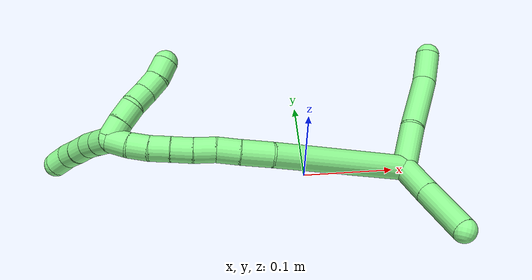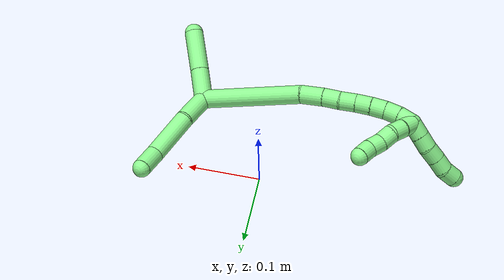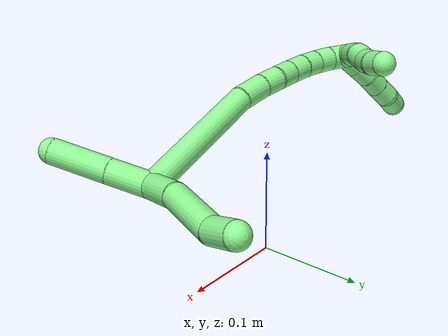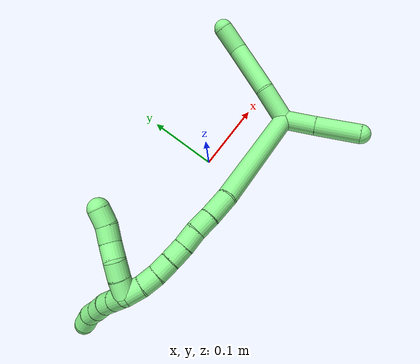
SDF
<sdf version="1.7">
 <world name="default">
  <model name="13">
   <static>0</static>
   <link name="13">
    <collision name="collision-cylinder-e_1_2_8">
     <pose>-9.7e-05 0.005588 0.022998 -0.238364 -0.004101 0.000491</pose>
     <geometry><cylinder><radius>0.0125</radius><length>0.047334</length></cylinder></geometry>
     <surface>
      <friction><ode><mu>1.16</mu><mu2>1.16</mu2><slip1>0</slip1><slip2>0</slip2></ode></friction>
      <contact><ode><kp>1e+06</kp><kd>1</kd><max_vel>0</max_vel><min_depth>0.001</min_depth></ode></contact>
     </surface>
    </collision>
    <visual name="visual-cylinder-e_1_2_8">
     <pose>-9.7e-05 0.005588 0.022998 -0.238364 -0.004101 0.000491</pose>
     <geometry><cylinder><radius>0.0125</radius><length>0.047334</length></cylinder></geometry>
     <material><ambient>0.564706 0.984314 0.572549 1</ambient></material>
    </visual>
    <collision name="collision-cylinder-e_2_8_9">
     <pose>0.001892 0.025979 0.076549 -0.451152 0.061357 -0.014084</pose>
     <geometry><cylinder><radius>0.0125</radius><length>0.06803</length></cylinder></geometry>
     <surface>
      <friction><ode><mu>1.16</mu><mu2>1.16</mu2><slip1>0</slip1><slip2>0</slip2></ode></friction>
      <contact><ode><kp>1e+06</kp><kd>1</kd><max_vel>0</max_vel><min_depth>0.001</min_depth></ode></contact>
     </surface>
    </collision>
    <visual name="visual-cylinder-e_2_8_9">
     <pose>0.001892 0.025979 0.076549 -0.451152 0.061357 -0.014084</pose>
     <geometry><cylinder><radius>0.0125</radius><length>0.06803</length></cylinder></geometry>
     <material><ambient>0.564706 0.984314 0.572549 1</ambient></material>
    </visual>
    <collision name="collision-cylinder-e_3_9_6">
     <pose>0.002615 0.0432 0.124197 -0.140551 -0.078754 0.005546</pose>
     <geometry><cylinder><radius>0.0125</radius><length>0.034636</length></cylinder></geometry>
     <surface>
      <friction><ode><mu>1.16</mu><mu2>1.16</mu2><slip1>0</slip1><slip2>0</slip2></ode></friction>
      <contact><ode><kp>1e+06</kp><kd>1</kd><max_vel>0</max_vel><min_depth>0.001</min_depth></ode></contact>
     </surface>
    </collision>
    <visual name="visual-cylinder-e_3_9_6">
     <pose>0.002615 0.0432 0.124197 -0.140551 -0.078754 0.005546</pose>
     <geometry><cylinder><radius>0.0125</radius><length>0.034636</length></cylinder></geometry>
     <material><ambient>0.564706 0.984314 0.572549 1</ambient></material>
    </visual>
    <collision name="collision-cylinder-e_1_2_10">
     <pose>0.012638 -0.011853 -0.012118 2.36726 0.64066 1.36599</pose>
     <geometry><cylinder><radius>0.0125</radius><length>0.042287</length></cylinder></geometry>
     <surface>
      <friction><ode><mu>1.16</mu><mu2>1.16</mu2><slip1>0</slip1><slip2>0</slip2></ode></friction>
      <contact><ode><kp>1e+06</kp><kd>1</kd><max_vel>0</max_vel><min_depth>0.001</min_depth></ode></contact>
     </surface>
    </collision>
    <visual name="visual-cylinder-e_1_2_10">
     <pose>0.012638 -0.011853 -0.012118 2.36726 0.64066 1.36599</pose>
     <geometry><cylinder><radius>0.0125</radius><length>0.042287</length></cylinder></geometry>
     <material><ambient>0.564706 0.984314 0.572549 1</ambient></material>
    </visual>
    <collision name="collision-cylinder-e_2_10_5">
     <pose>0.042749 -0.040091 -0.040326 2.34708 0.650424 1.35393</pose>
     <geometry><cylinder><radius>0.0125</radius><length>0.057713</length></cylinder></geometry>
     <surface>
      <friction><ode><mu>1.16</mu><mu2>1.16</mu2><slip1>0</slip1><slip2>0</slip2></ode></friction>
      <contact><ode><kp>1e+06</kp><kd>1</kd><max_vel>0</max_vel><min_depth>0.001</min_depth></ode></contact>
     </surface>
    </collision>
    <visual name="visual-cylinder-e_2_10_5">
     <pose>0.042749 -0.040091 -0.040326 2.34708 0.650424 1.35393</pose>
     <geometry><cylinder><radius>0.0125</radius><length>0.057713</length></cylinder></geometry>
     <material><ambient>0.564706 0.984314 0.572549 1</ambient></material>
    </visual>
    <collision name="collision-cylinder-e_1_2_11">
     <pose>-0.064496 -0.024589 -0.016101 2.15055 -1.14321 -1.74393</pose>
     <geometry><cylinder><radius>0.0125</radius><length>0.141755</length></cylinder></geometry>
     <surface>
      <friction><ode><mu>1.16</mu><mu2>1.16</mu2><slip1>0</slip1><slip2>0</slip2></ode></friction>
      <contact><ode><kp>1e+06</kp><kd>1</kd><max_vel>0</max_vel><min_depth>0.001</min_depth></ode></contact>
     </surface>
    </collision>
    <visual name="visual-cylinder-e_1_2_11">
     <pose>-0.064496 -0.024589 -0.016101 2.15055 -1.14321 -1.74393</pose>
     <geometry><cylinder><radius>0.0125</radius><length>0.141755</length></cylinder></geometry>
     <material><ambient>0.564706 0.984314 0.572549 1</ambient></material>
    </visual>
    <collision name="collision-cylinder-e_2_11_12">
     <pose>-0.144159 -0.052032 -0.03561 2.44449 -1.28571 -2.23817</pose>
     <geometry><cylinder><radius>0.0125</radius><length>0.031609</length></cylinder></geometry>
     <surface>
      <friction><ode><mu>1.16</mu><mu2>1.16</mu2><slip1>0</slip1><slip2>0</slip2></ode></friction>
      <contact><ode><kp>1e+06</kp><kd>1</kd><max_vel>0</max_vel><min_depth>0.001</min_depth></ode></contact>
     </surface>
    </collision>
    <visual name="visual-cylinder-e_2_11_12">
     <pose>-0.144159 -0.052032 -0.03561 2.44449 -1.28571 -2.23817</pose>
     <geometry><cylinder><radius>0.0125</radius><length>0.031609</length></cylinder></geometry>
     <material><ambient>0.564706 0.984314 0.572549 1</ambient></material>
    </visual>
    <collision name="collision-cylinder-e_3_12_13">
     <pose>-0.170543 -0.056213 -0.041053 2.56325 -1.35748 -2.43485</pose>
     <geometry><cylinder><radius>0.0125</radius><length>0.022955</length></cylinder></geometry>
     <surface>
      <friction><ode><mu>1.16</mu><mu2>1.16</mu2><slip1>0</slip1><slip2>0</slip2></ode></friction>
      <contact><ode><kp>1e+06</kp><kd>1</kd><max_vel>0</max_vel><min_depth>0.001</min_depth></ode></contact>
     </surface>
    </collision>
    <visual name="visual-cylinder-e_3_12_13">
     <pose>-0.170543 -0.056213 -0.041053 2.56325 -1.35748 -2.43485</pose>
     <geometry><cylinder><radius>0.0125</radius><length>0.022955</length></cylinder></geometry>
     <material><ambient>0.564706 0.984314 0.572549 1</ambient></material>
    </visual>
    <collision name="collision-cylinder-e_4_13_14">
     <pose>-0.192039 -0.058546 -0.046502 2.85557 -1.23744 -2.74249</pose>
     <geometry><cylinder><radius>0.0125</radius><length>0.021755</length></cylinder></geometry>
     <surface>
      <friction><ode><mu>1.16</mu><mu2>1.16</mu2><slip1>0</slip1><slip2>0</slip2></ode></friction>
      <contact><ode><kp>1e+06</kp><kd>1</kd><max_vel>0</max_vel><min_depth>0.001</min_depth></ode></contact>
     </surface>
    </collision>
    <visual name="visual-cylinder-e_4_13_14">
     <pose>-0.192039 -0.058546 -0.046502 2.85557 -1.23744 -2.74249</pose>
     <geometry><cylinder><radius>0.0125</radius><length>0.021755</length></cylinder></geometry>
     <material><ambient>0.564706 0.984314 0.572549 1</ambient></material>
    </visual>
    <collision name="collision-cylinder-e_5_14_15">
     <pose>-0.212663 -0.060419 -0.052309 2.79321 -1.32957 -2.69989</pose>
     <geometry><cylinder><radius>0.0125</radius><length>0.021306</length></cylinder></geometry>
     <surface>
      <friction><ode><mu>1.16</mu><mu2>1.16</mu2><slip1>0</slip1><slip2>0</slip2></ode></friction>
      <contact><ode><kp>1e+06</kp><kd>1</kd><max_vel>0</max_vel><min_depth>0.001</min_depth></ode></contact>
     </surface>
    </collision>
    <visual name="visual-cylinder-e_5_14_15">
     <pose>-0.212663 -0.060419 -0.052309 2.79321 -1.32957 -2.69989</pose>
     <geometry><cylinder><radius>0.0125</radius><length>0.021306</length></cylinder></geometry>
     <material><ambient>0.564706 0.984314 0.572549 1</ambient></material>
    </visual>
    <collision name="collision-cylinder-e_6_15_16">
     <pose>-0.232825 -0.061458 -0.056929 3.06509 -1.34704 -3.04576</pose>
     <geometry><cylinder><radius>0.0125</radius><length>0.020138</length></cylinder></geometry>
     <surface>
      <friction><ode><mu>1.16</mu><mu2>1.16</mu2><slip1>0</slip1><slip2>0</slip2></ode></friction>
      <contact><ode><kp>1e+06</kp><kd>1</kd><max_vel>0</max_vel><min_depth>0.001</min_depth></ode></contact>
     </surface>
    </collision>
    <visual name="visual-cylinder-e_6_15_16">
     <pose>-0.232825 -0.061458 -0.056929 3.06509 -1.34704 -3.04576</pose>
     <geometry><cylinder><radius>0.0125</radius><length>0.020138</length></cylinder></geometry>
     <material><ambient>0.564706 0.984314 0.572549 1</ambient></material>
    </visual>
    <collision name="collision-cylinder-e_7_16_17">
     <pose>-0.252721 -0.061234 -0.060161 -2.76711 -1.46414 2.72602</pose>
     <geometry><cylinder><radius>0.0125</radius><length>0.020271</length></cylinder></geometry>
     <surface>
      <friction><ode><mu>1.16</mu><mu2>1.16</mu2><slip1>0</slip1><slip2>0</slip2></ode></friction>
      <contact><ode><kp>1e+06</kp><kd>1</kd><max_vel>0</max_vel><min_depth>0.001</min_depth></ode></contact>
     </surface>
    </collision>
    <visual name="visual-cylinder-e_7_16_17">
     <pose>-0.252721 -0.061234 -0.060161 -2.76711 -1.46414 2.72602</pose>
     <geometry><cylinder><radius>0.0125</radius><length>0.020271</length></cylinder></geometry>
     <material><ambient>0.564706 0.984314 0.572549 1</ambient></material>
    </visual>
    <collision name="collision-cylinder-e_8_17_1">
     <pose>-0.272813 -0.05955 -0.060744 -1.25516 -1.43614 1.12975</pose>
     <geometry><cylinder><radius>0.0125</radius><length>0.02021</length></cylinder></geometry>
     <surface>
      <friction><ode><mu>1.16</mu><mu2>1.16</mu2><slip1>0</slip1><slip2>0</slip2></ode></friction>
      <contact><ode><kp>1e+06</kp><kd>1</kd><max_vel>0</max_vel><min_depth>0.001</min_depth></ode></contact>
     </surface>
    </collision>
    <visual name="visual-cylinder-e_8_17_1">
     <pose>-0.272813 -0.05955 -0.060744 -1.25516 -1.43614 1.12975</pose>
     <geometry><cylinder><radius>0.0125</radius><length>0.02021</length></cylinder></geometry>
     <material><ambient>0.564706 0.984314 0.572549 1</ambient></material>
    </visual>
    <collision name="collision-cylinder-e_1_1_18">
     <pose>-0.28937 -0.050842 -0.061789 -1.76595 -0.713287 0.851408</pose>
     <geometry><cylinder><radius>0.0125</radius><length>0.02</length></cylinder></geometry>
     <surface>
      <friction><ode><mu>1.16</mu><mu2>1.16</mu2><slip1>0</slip1><slip2>0</slip2></ode></friction>
      <contact><ode><kp>1e+06</kp><kd>1</kd><max_vel>0</max_vel><min_depth>0.001</min_depth></ode></contact>
     </surface>
    </collision>
    <visual name="visual-cylinder-e_1_1_18">
     <pose>-0.28937 -0.050842 -0.061789 -1.76595 -0.713287 0.851408</pose>
     <geometry><cylinder><radius>0.0125</radius><length>0.02</length></cylinder></geometry>
     <material><ambient>0.564706 0.984314 0.572549 1</ambient></material>
    </visual>
    <collision name="collision-cylinder-e_2_18_19">
     <pose>-0.302441 -0.03599 -0.064714 -1.76458 -0.711321 0.848096</pose>
     <geometry><cylinder><radius>0.0125</radius><length>0.02</length></cylinder></geometry>
     <surface>
      <friction><ode><mu>1.16</mu><mu2>1.16</mu2><slip1>0</slip1><slip2>0</slip2></ode></friction>
      <contact><ode><kp>1e+06</kp><kd>1</kd><max_vel>0</max_vel><min_depth>0.001</min_depth></ode></contact>
     </surface>
    </collision>
    <visual name="visual-cylinder-e_2_18_19">
     <pose>-0.302441 -0.03599 -0.064714 -1.76458 -0.711321 0.848096</pose>
     <geometry><cylinder><radius>0.0125</radius><length>0.02</length></cylinder></geometry>
     <material><ambient>0.564706 0.984314 0.572549 1</ambient></material>
    </visual>
    <collision name="collision-cylinder-e_3_19_20">
     <pose>-0.315248 -0.021426 -0.069295 -1.98347 -0.678703 0.990124</pose>
     <geometry><cylinder><radius>0.0125</radius><length>0.02</length></cylinder></geometry>
     <surface>
      <friction><ode><mu>1.16</mu><mu2>1.16</mu2><slip1>0</slip1><slip2>0</slip2></ode></friction>
      <contact><ode><kp>1e+06</kp><kd>1</kd><max_vel>0</max_vel><min_depth>0.001</min_depth></ode></contact>
     </surface>
    </collision>
    <visual name="visual-cylinder-e_3_19_20">
     <pose>-0.315248 -0.021426 -0.069295 -1.98347 -0.678703 0.990124</pose>
     <geometry><cylinder><radius>0.0125</radius><length>0.02</length></cylinder></geometry>
     <material><ambient>0.564706 0.984314 0.572549 1</ambient></material>
    </visual>
    <collision name="collision-cylinder-e_4_20_21">
     <pose>-0.327872 -0.006963 -0.074858 -1.89221 -0.687515 0.92166</pose>
     <geometry><cylinder><radius>0.0125</radius><length>0.02</length></cylinder></geometry>
     <surface>
      <friction><ode><mu>1.16</mu><mu2>1.16</mu2><slip1>0</slip1><slip2>0</slip2></ode></friction>
      <contact><ode><kp>1e+06</kp><kd>1</kd><max_vel>0</max_vel><min_depth>0.001</min_depth></ode></contact>
     </surface>
    </collision>
    <visual name="visual-cylinder-e_4_20_21">
     <pose>-0.327872 -0.006963 -0.074858 -1.89221 -0.687515 0.92166</pose>
     <geometry><cylinder><radius>0.0125</radius><length>0.02</length></cylinder></geometry>
     <material><ambient>0.564706 0.984314 0.572549 1</ambient></material>
    </visual>
    <collision name="collision-cylinder-e_5_21_4">
     <pose>-0.340635 0.006173 -0.082313 -2.28319 -0.696703 1.34157</pose>
     <geometry><cylinder><radius>0.0125</radius><length>0.02</length></cylinder></geometry>
     <surface>
      <friction><ode><mu>1.16</mu><mu2>1.16</mu2><slip1>0</slip1><slip2>0</slip2></ode></friction>
      <contact><ode><kp>1e+06</kp><kd>1</kd><max_vel>0</max_vel><min_depth>0.001</min_depth></ode></contact>
     </surface>
    </collision>
    <visual name="visual-cylinder-e_5_21_4">
     <pose>-0.340635 0.006173 -0.082313 -2.28319 -0.696703 1.34157</pose>
     <geometry><cylinder><radius>0.0125</radius><length>0.02</length></cylinder></geometry>
     <material><ambient>0.564706 0.984314 0.572549 1</ambient></material>
    </visual>
    <collision name="collision-cylinder-e_1_1_22">
     <pose>-0.280584 -0.057804 -0.050588 -0.046891 0.226196 -0.005327</pose>
     <geometry><cylinder><radius>0.0125</radius><length>0.02</length></cylinder></geometry>
     <surface>
      <friction><ode><mu>1.16</mu><mu2>1.16</mu2><slip1>0</slip1><slip2>0</slip2></ode></friction>
      <contact><ode><kp>1e+06</kp><kd>1</kd><max_vel>0</max_vel><min_depth>0.001</min_depth></ode></contact>
     </surface>
    </collision>
    <visual name="visual-cylinder-e_1_1_22">
     <pose>-0.280584 -0.057804 -0.050588 -0.046891 0.226196 -0.005327</pose>
     <geometry><cylinder><radius>0.0125</radius><length>0.02</length></cylinder></geometry>
     <material><ambient>0.564706 0.984314 0.572549 1</ambient></material>
    </visual>
    <collision name="collision-cylinder-e_2_22_23">
     <pose>-0.275378 -0.056334 -0.031356 -0.106198 0.300791 -0.016108</pose>
     <geometry><cylinder><radius>0.0125</radius><length>0.02</length></cylinder></geometry>
     <surface>
      <friction><ode><mu>1.16</mu><mu2>1.16</mu2><slip1>0</slip1><slip2>0</slip2></ode></friction>
      <contact><ode><kp>1e+06</kp><kd>1</kd><max_vel>0</max_vel><min_depth>0.001</min_depth></ode></contact>
     </surface>
    </collision>
    <visual name="visual-cylinder-e_2_22_23">
     <pose>-0.275378 -0.056334 -0.031356 -0.106198 0.300791 -0.016108</pose>
     <geometry><cylinder><radius>0.0125</radius><length>0.02</length></cylinder></geometry>
     <material><ambient>0.564706 0.984314 0.572549 1</ambient></material>
    </visual>
    <collision name="collision-cylinder-e_3_23_24">
     <pose>-0.269618 -0.051056 -0.013258 -0.460475 0.283534 -0.066883</pose>
     <geometry><cylinder><radius>0.0125</radius><length>0.02</length></cylinder></geometry>
     <surface>
      <friction><ode><mu>1.16</mu><mu2>1.16</mu2><slip1>0</slip1><slip2>0</slip2></ode></friction>
      <contact><ode><kp>1e+06</kp><kd>1</kd><max_vel>0</max_vel><min_depth>0.001</min_depth></ode></contact>
     </surface>
    </collision>
    <visual name="visual-cylinder-e_3_23_24">
     <pose>-0.269618 -0.051056 -0.013258 -0.460475 0.283534 -0.066883</pose>
     <geometry><cylinder><radius>0.0125</radius><length>0.02</length></cylinder></geometry>
     <material><ambient>0.564706 0.984314 0.572549 1</ambient></material>
    </visual>
    <collision name="collision-cylinder-e_4_24_25">
     <pose>-0.263479 -0.044727 0.004539 -0.220607 0.340673 -0.038095</pose>
     <geometry><cylinder><radius>0.0125</radius><length>0.02</length></cylinder></geometry>
     <surface>
      <friction><ode><mu>1.16</mu><mu2>1.16</mu2><slip1>0</slip1><slip2>0</slip2></ode></friction>
      <contact><ode><kp>1e+06</kp><kd>1</kd><max_vel>0</max_vel><min_depth>0.001</min_depth></ode></contact>
     </surface>
    </collision>
    <visual name="visual-cylinder-e_4_24_25">
     <pose>-0.263479 -0.044727 0.004539 -0.220607 0.340673 -0.038095</pose>
     <geometry><cylinder><radius>0.0125</radius><length>0.02</length></cylinder></geometry>
     <material><ambient>0.564706 0.984314 0.572549 1</ambient></material>
    </visual>
    <collision name="collision-cylinder-e_5_25_3">
     <pose>-0.25902 -0.040937 0.023522 -0.174776 0.112093 -0.009831</pose>
     <geometry><cylinder><radius>0.0125</radius><length>0.02</length></cylinder></geometry>
     <surface>
      <friction><ode><mu>1.16</mu><mu2>1.16</mu2><slip1>0</slip1><slip2>0</slip2></ode></friction>
      <contact><ode><kp>1e+06</kp><kd>1</kd><max_vel>0</max_vel><min_depth>0.001</min_depth></ode></contact>
     </surface>
    </collision>
    <visual name="visual-cylinder-e_5_25_3">
     <pose>-0.25902 -0.040937 0.023522 -0.174776 0.112093 -0.009831</pose>
     <geometry><cylinder><radius>0.0125</radius><length>0.02</length></cylinder></geometry>
     <material><ambient>0.564706 0.984314 0.572549 1</ambient></material>
    </visual>
    <collision name="collision-sphere-3">
     <pose>-0.257901 -0.039209 0.033308 0 -0 0</pose>
     <geometry><sphere><radius>0.0125</radius></sphere></geometry>
     <surface>
      <friction><ode><mu>1.16</mu><mu2>1.16</mu2><slip1>0</slip1><slip2>0</slip2></ode></friction>
      <contact><ode><kp>1e+06</kp><kd>1</kd><max_vel>0</max_vel><min_depth>0.001</min_depth></ode></contact>
     </surface>
    </collision>
    <visual name="visual-sphere-3">
     <pose>-0.257901 -0.039209 0.033308 0 -0 0</pose>
     <geometry><sphere><radius>0.0125</radius></sphere></geometry>
     <material><ambient>0.564706 0.984314 0.572549 1</ambient></material>
    </visual>
    <collision name="collision-sphere-25">
     <pose>-0.260138 -0.042665 0.013736 0 -0 0</pose>
     <geometry><sphere><radius>0.0125</radius></sphere></geometry>
     <surface>
      <friction><ode><mu>1.16</mu><mu2>1.16</mu2><slip1>0</slip1><slip2>0</slip2></ode></friction>
      <contact><ode><kp>1e+06</kp><kd>1</kd><max_vel>0</max_vel><min_depth>0.001</min_depth></ode></contact>
     </surface>
    </collision>
    <visual name="visual-sphere-25">
     <pose>-0.260138 -0.042665 0.013736 0 -0 0</pose>
     <geometry><sphere><radius>0.0125</radius></sphere></geometry>
     <material><ambient>0.564706 0.984314 0.572549 1</ambient></material>
    </visual>
    <collision name="collision-sphere-24">
     <pose>-0.266821 -0.046789 -0.004658 0 -0 0</pose>
     <geometry><sphere><radius>0.0125</radius></sphere></geometry>
     <surface>
      <friction><ode><mu>1.16</mu><mu2>1.16</mu2><slip1>0</slip1><slip2>0</slip2></ode></friction>
      <contact><ode><kp>1e+06</kp><kd>1</kd><max_vel>0</max_vel><min_depth>0.001</min_depth></ode></contact>
     </surface>
    </collision>
    <visual name="visual-sphere-24">
     <pose>-0.266821 -0.046789 -0.004658 0 -0 0</pose>
     <geometry><sphere><radius>0.0125</radius></sphere></geometry>
     <material><ambient>0.564706 0.984314 0.572549 1</ambient></material>
    </visual>
    <collision name="collision-sphere-23">
     <pose>-0.272416 -0.055322 -0.021859 0 -0 0</pose>
     <geometry><sphere><radius>0.0125</radius></sphere></geometry>
     <surface>
      <friction><ode><mu>1.16</mu><mu2>1.16</mu2><slip1>0</slip1><slip2>0</slip2></ode></friction>
      <contact><ode><kp>1e+06</kp><kd>1</kd><max_vel>0</max_vel><min_depth>0.001</min_depth></ode></contact>
     </surface>
    </collision>
    <visual name="visual-sphere-23">
     <pose>-0.272416 -0.055322 -0.021859 0 -0 0</pose>
     <geometry><sphere><radius>0.0125</radius></sphere></geometry>
     <material><ambient>0.564706 0.984314 0.572549 1</ambient></material>
    </visual>
    <collision name="collision-sphere-22">
     <pose>-0.278341 -0.057347 -0.040853 0 -0 0</pose>
     <geometry><sphere><radius>0.0125</radius></sphere></geometry>
     <surface>
      <friction><ode><mu>1.16</mu><mu2>1.16</mu2><slip1>0</slip1><slip2>0</slip2></ode></friction>
      <contact><ode><kp>1e+06</kp><kd>1</kd><max_vel>0</max_vel><min_depth>0.001</min_depth></ode></contact>
     </surface>
    </collision>
    <visual name="visual-sphere-22">
     <pose>-0.278341 -0.057347 -0.040853 0 -0 0</pose>
     <geometry><sphere><radius>0.0125</radius></sphere></geometry>
     <material><ambient>0.564706 0.984314 0.572549 1</ambient></material>
    </visual>
    <collision name="collision-sphere-4">
     <pose>-0.347052 0.011978 -0.087326 0 -0 0</pose>
     <geometry><sphere><radius>0.0125</radius></sphere></geometry>
     <surface>
      <friction><ode><mu>1.16</mu><mu2>1.16</mu2><slip1>0</slip1><slip2>0</slip2></ode></friction>
      <contact><ode><kp>1e+06</kp><kd>1</kd><max_vel>0</max_vel><min_depth>0.001</min_depth></ode></contact>
     </surface>
    </collision>
    <visual name="visual-sphere-4">
     <pose>-0.347052 0.011978 -0.087326 0 -0 0</pose>
     <geometry><sphere><radius>0.0125</radius></sphere></geometry>
     <material><ambient>0.564706 0.984314 0.572549 1</ambient></material>
    </visual>
    <collision name="collision-sphere-21">
     <pose>-0.334218 0.000369 -0.077299 0 -0 0</pose>
     <geometry><sphere><radius>0.0125</radius></sphere></geometry>
     <surface>
      <friction><ode><mu>1.16</mu><mu2>1.16</mu2><slip1>0</slip1><slip2>0</slip2></ode></friction>
      <contact><ode><kp>1e+06</kp><kd>1</kd><max_vel>0</max_vel><min_depth>0.001</min_depth></ode></contact>
     </surface>
    </collision>
    <visual name="visual-sphere-21">
     <pose>-0.334218 0.000369 -0.077299 0 -0 0</pose>
     <geometry><sphere><radius>0.0125</radius></sphere></geometry>
     <material><ambient>0.564706 0.984314 0.572549 1</ambient></material>
    </visual>
    <collision name="collision-sphere-20">
     <pose>-0.321525 -0.014296 -0.072416 0 -0 0</pose>
     <geometry><sphere><radius>0.0125</radius></sphere></geometry>
     <surface>
      <friction><ode><mu>1.16</mu><mu2>1.16</mu2><slip1>0</slip1><slip2>0</slip2></ode></friction>
      <contact><ode><kp>1e+06</kp><kd>1</kd><max_vel>0</max_vel><min_depth>0.001</min_depth></ode></contact>
     </surface>
    </collision>
    <visual name="visual-sphere-20">
     <pose>-0.321525 -0.014296 -0.072416 0 -0 0</pose>
     <geometry><sphere><radius>0.0125</radius></sphere></geometry>
     <material><ambient>0.564706 0.984314 0.572549 1</ambient></material>
    </visual>
    <collision name="collision-sphere-5">
     <pose>0.060223 -0.056477 -0.056416 0 -0 0</pose>
     <geometry><sphere><radius>0.0125</radius></sphere></geometry>
     <surface>
      <friction><ode><mu>1.16</mu><mu2>1.16</mu2><slip1>0</slip1><slip2>0</slip2></ode></friction>
      <contact><ode><kp>1e+06</kp><kd>1</kd><max_vel>0</max_vel><min_depth>0.001</min_depth></ode></contact>
     </surface>
    </collision>
    <visual name="visual-sphere-5">
     <pose>0.060223 -0.056477 -0.056416 0 -0 0</pose>
     <geometry><sphere><radius>0.0125</radius></sphere></geometry>
     <material><ambient>0.564706 0.984314 0.572549 1</ambient></material>
    </visual>
    <collision name="collision-sphere-10">
     <pose>0.025276 -0.023706 -0.024236 0 -0 0</pose>
     <geometry><sphere><radius>0.0125</radius></sphere></geometry>
     <surface>
      <friction><ode><mu>1.16</mu><mu2>1.16</mu2><slip1>0</slip1><slip2>0</slip2></ode></friction>
      <contact><ode><kp>1e+06</kp><kd>1</kd><max_vel>0</max_vel><min_depth>0.001</min_depth></ode></contact>
     </surface>
    </collision>
    <visual name="visual-sphere-10">
     <pose>0.025276 -0.023706 -0.024236 0 -0 0</pose>
     <geometry><sphere><radius>0.0125</radius></sphere></geometry>
     <material><ambient>0.564706 0.984314 0.572549 1</ambient></material>
    </visual>
    <collision name="collision-sphere-6">
     <pose>0.001252 0.045619 0.141292 0 -0 0</pose>
     <geometry><sphere><radius>0.0125</radius></sphere></geometry>
     <surface>
      <friction><ode><mu>1.16</mu><mu2>1.16</mu2><slip1>0</slip1><slip2>0</slip2></ode></friction>
      <contact><ode><kp>1e+06</kp><kd>1</kd><max_vel>0</max_vel><min_depth>0.001</min_depth></ode></contact>
     </surface>
    </collision>
    <visual name="visual-sphere-6">
     <pose>0.001252 0.045619 0.141292 0 -0 0</pose>
     <geometry><sphere><radius>0.0125</radius></sphere></geometry>
     <material><ambient>0.564706 0.984314 0.572549 1</ambient></material>
    </visual>
    <collision name="collision-sphere-9">
     <pose>0.003977 0.040781 0.107103 0 -0 0</pose>
     <geometry><sphere><radius>0.0125</radius></sphere></geometry>
     <surface>
      <friction><ode><mu>1.16</mu><mu2>1.16</mu2><slip1>0</slip1><slip2>0</slip2></ode></friction>
      <contact><ode><kp>1e+06</kp><kd>1</kd><max_vel>0</max_vel><min_depth>0.001</min_depth></ode></contact>
     </surface>
    </collision>
    <visual name="visual-sphere-9">
     <pose>0.003977 0.040781 0.107103 0 -0 0</pose>
     <geometry><sphere><radius>0.0125</radius></sphere></geometry>
     <material><ambient>0.564706 0.984314 0.572549 1</ambient></material>
    </visual>
    <collision name="collision-sphere-2">
     <geometry><sphere><radius>0.0125</radius></sphere></geometry>
     <surface>
      <friction><ode><mu>1.16</mu><mu2>1.16</mu2><slip1>0</slip1><slip2>0</slip2></ode></friction>
      <contact><ode><kp>1e+06</kp><kd>1</kd><max_vel>0</max_vel><min_depth>0.001</min_depth></ode></contact>
     </surface>
    </collision>
    <visual name="visual-sphere-2">
     <geometry><sphere><radius>0.0125</radius></sphere></geometry>
     <material><ambient>0.564706 0.984314 0.572549 1</ambient></material>
    </visual>
    <collision name="collision-sphere-19">
     <pose>-0.30897 -0.028557 -0.066173 0 -0 0</pose>
     <geometry><sphere><radius>0.0125</radius></sphere></geometry>
     <surface>
      <friction><ode><mu>1.16</mu><mu2>1.16</mu2><slip1>0</slip1><slip2>0</slip2></ode></friction>
      <contact><ode><kp>1e+06</kp><kd>1</kd><max_vel>0</max_vel><min_depth>0.001</min_depth></ode></contact>
     </surface>
    </collision>
    <visual name="visual-sphere-19">
     <pose>-0.30897 -0.028557 -0.066173 0 -0 0</pose>
     <geometry><sphere><radius>0.0125</radius></sphere></geometry>
     <material><ambient>0.564706 0.984314 0.572549 1</ambient></material>
    </visual>
    <collision name="collision-sphere-8">
     <pose>-0.000194 0.011176 0.045995 0 -0 0</pose>
     <geometry><sphere><radius>0.0125</radius></sphere></geometry>
     <surface>
      <friction><ode><mu>1.16</mu><mu2>1.16</mu2><slip1>0</slip1><slip2>0</slip2></ode></friction>
      <contact><ode><kp>1e+06</kp><kd>1</kd><max_vel>0</max_vel><min_depth>0.001</min_depth></ode></contact>
     </surface>
    </collision>
    <visual name="visual-sphere-8">
     <pose>-0.000194 0.011176 0.045995 0 -0 0</pose>
     <geometry><sphere><radius>0.0125</radius></sphere></geometry>
     <material><ambient>0.564706 0.984314 0.572549 1</ambient></material>
    </visual>
    <collision name="collision-sphere-11">
     <pose>-0.128993 -0.049178 -0.032202 0 -0 0</pose>
     <geometry><sphere><radius>0.0125</radius></sphere></geometry>
     <surface>
      <friction><ode><mu>1.16</mu><mu2>1.16</mu2><slip1>0</slip1><slip2>0</slip2></ode></friction>
      <contact><ode><kp>1e+06</kp><kd>1</kd><max_vel>0</max_vel><min_depth>0.001</min_depth></ode></contact>
     </surface>
    </collision>
    <visual name="visual-sphere-11">
     <pose>-0.128993 -0.049178 -0.032202 0 -0 0</pose>
     <geometry><sphere><radius>0.0125</radius></sphere></geometry>
     <material><ambient>0.564706 0.984314 0.572549 1</ambient></material>
    </visual>
    <collision name="collision-sphere-12">
     <pose>-0.159326 -0.054885 -0.039018 0 -0 0</pose>
     <geometry><sphere><radius>0.0125</radius></sphere></geometry>
     <surface>
      <friction><ode><mu>1.16</mu><mu2>1.16</mu2><slip1>0</slip1><slip2>0</slip2></ode></friction>
      <contact><ode><kp>1e+06</kp><kd>1</kd><max_vel>0</max_vel><min_depth>0.001</min_depth></ode></contact>
     </surface>
    </collision>
    <visual name="visual-sphere-12">
     <pose>-0.159326 -0.054885 -0.039018 0 -0 0</pose>
     <geometry><sphere><radius>0.0125</radius></sphere></geometry>
     <material><ambient>0.564706 0.984314 0.572549 1</ambient></material>
    </visual>
    <collision name="collision-sphere-13">
     <pose>-0.181761 -0.057542 -0.043088 0 -0 0</pose>
     <geometry><sphere><radius>0.0125</radius></sphere></geometry>
     <surface>
      <friction><ode><mu>1.16</mu><mu2>1.16</mu2><slip1>0</slip1><slip2>0</slip2></ode></friction>
      <contact><ode><kp>1e+06</kp><kd>1</kd><max_vel>0</max_vel><min_depth>0.001</min_depth></ode></contact>
     </surface>
    </collision>
    <visual name="visual-sphere-13">
     <pose>-0.181761 -0.057542 -0.043088 0 -0 0</pose>
     <geometry><sphere><radius>0.0125</radius></sphere></geometry>
     <material><ambient>0.564706 0.984314 0.572549 1</ambient></material>
    </visual>
    <collision name="collision-sphere-14">
     <pose>-0.202318 -0.05955 -0.049917 0 -0 0</pose>
     <geometry><sphere><radius>0.0125</radius></sphere></geometry>
     <surface>
      <friction><ode><mu>1.16</mu><mu2>1.16</mu2><slip1>0</slip1><slip2>0</slip2></ode></friction>
      <contact><ode><kp>1e+06</kp><kd>1</kd><max_vel>0</max_vel><min_depth>0.001</min_depth></ode></contact>
     </surface>
    </collision>
    <visual name="visual-sphere-14">
     <pose>-0.202318 -0.05955 -0.049917 0 -0 0</pose>
     <geometry><sphere><radius>0.0125</radius></sphere></geometry>
     <material><ambient>0.564706 0.984314 0.572549 1</ambient></material>
    </visual>
    <collision name="collision-sphere-15">
     <pose>-0.223007 -0.061288 -0.054701 0 -0 0</pose>
     <geometry><sphere><radius>0.0125</radius></sphere></geometry>
     <surface>
      <friction><ode><mu>1.16</mu><mu2>1.16</mu2><slip1>0</slip1><slip2>0</slip2></ode></friction>
      <contact><ode><kp>1e+06</kp><kd>1</kd><max_vel>0</max_vel><min_depth>0.001</min_depth></ode></contact>
     </surface>
    </collision>
    <visual name="visual-sphere-15">
     <pose>-0.223007 -0.061288 -0.054701 0 -0 0</pose>
     <geometry><sphere><radius>0.0125</radius></sphere></geometry>
     <material><ambient>0.564706 0.984314 0.572549 1</ambient></material>
    </visual>
    <collision name="collision-sphere-16">
     <pose>-0.242643 -0.061629 -0.059156 0 -0 0</pose>
     <geometry><sphere><radius>0.0125</radius></sphere></geometry>
     <surface>
      <friction><ode><mu>1.16</mu><mu2>1.16</mu2><slip1>0</slip1><slip2>0</slip2></ode></friction>
      <contact><ode><kp>1e+06</kp><kd>1</kd><max_vel>0</max_vel><min_depth>0.001</min_depth></ode></contact>
     </surface>
    </collision>
    <visual name="visual-sphere-16">
     <pose>-0.242643 -0.061629 -0.059156 0 -0 0</pose>
     <geometry><sphere><radius>0.0125</radius></sphere></geometry>
     <material><ambient>0.564706 0.984314 0.572549 1</ambient></material>
    </visual>
    <collision name="collision-sphere-17">
     <pose>-0.262799 -0.06084 -0.061165 0 -0 0</pose>
     <geometry><sphere><radius>0.0125</radius></sphere></geometry>
     <surface>
      <friction><ode><mu>1.16</mu><mu2>1.16</mu2><slip1>0</slip1><slip2>0</slip2></ode></friction>
      <contact><ode><kp>1e+06</kp><kd>1</kd><max_vel>0</max_vel><min_depth>0.001</min_depth></ode></contact>
     </surface>
    </collision>
    <visual name="visual-sphere-17">
     <pose>-0.262799 -0.06084 -0.061165 0 -0 0</pose>
     <geometry><sphere><radius>0.0125</radius></sphere></geometry>
     <material><ambient>0.564706 0.984314 0.572549 1</ambient></material>
    </visual>
    <collision name="collision-sphere-1">
     <pose>-0.282827 -0.05826 -0.060323 0 -0 0</pose>
     <geometry><sphere><radius>0.0125</radius></sphere></geometry>
     <surface>
      <friction><ode><mu>1.16</mu><mu2>1.16</mu2><slip1>0</slip1><slip2>0</slip2></ode></friction>
      <contact><ode><kp>1e+06</kp><kd>1</kd><max_vel>0</max_vel><min_depth>0.001</min_depth></ode></contact>
     </surface>
    </collision>
    <visual name="visual-sphere-1">
     <pose>-0.282827 -0.05826 -0.060323 0 -0 0</pose>
     <geometry><sphere><radius>0.0125</radius></sphere></geometry>
     <material><ambient>0.564706 0.984314 0.572549 1</ambient></material>
    </visual>
    <collision name="collision-sphere-18">
     <pose>-0.295913 -0.043423 -0.063255 0 -0 0</pose>
     <geometry><sphere><radius>0.0125</radius></sphere></geometry>
     <surface>
      <friction><ode><mu>1.16</mu><mu2>1.16</mu2><slip1>0</slip1><slip2>0</slip2></ode></friction>
      <contact><ode><kp>1e+06</kp><kd>1</kd><max_vel>0</max_vel><min_depth>0.001</min_depth></ode></contact>
     </surface>
    </collision>
    <visual name="visual-sphere-18">
     <pose>-0.295913 -0.043423 -0.063255 0 -0 0</pose>
     <geometry><sphere><radius>0.0125</radius></sphere></geometry>
     <material><ambient>0.564706 0.984314 0.572549 1</ambient></material>
    </visual>
    <inertial>
     <pose>-0.129207 -0.025532 -0.014286 0 -0 0</pose>
     <mass>0.75</mass>
     <inertia>
      <ixx>-5.7e-05</ixx>
      <ixy>0</ixy>
      <ixz>0</ixz>
      <iyy>0.000201</iyy>
      <iyz>0</iyz>
      <izz>0.000305</izz>
     </inertia>
    </inertial>
   </link>
   <pose>0.090331 -0.060047 0.082506 -1.12137 0.092618 -0.330719</pose>
  </model>
 </world>
</sdf>
